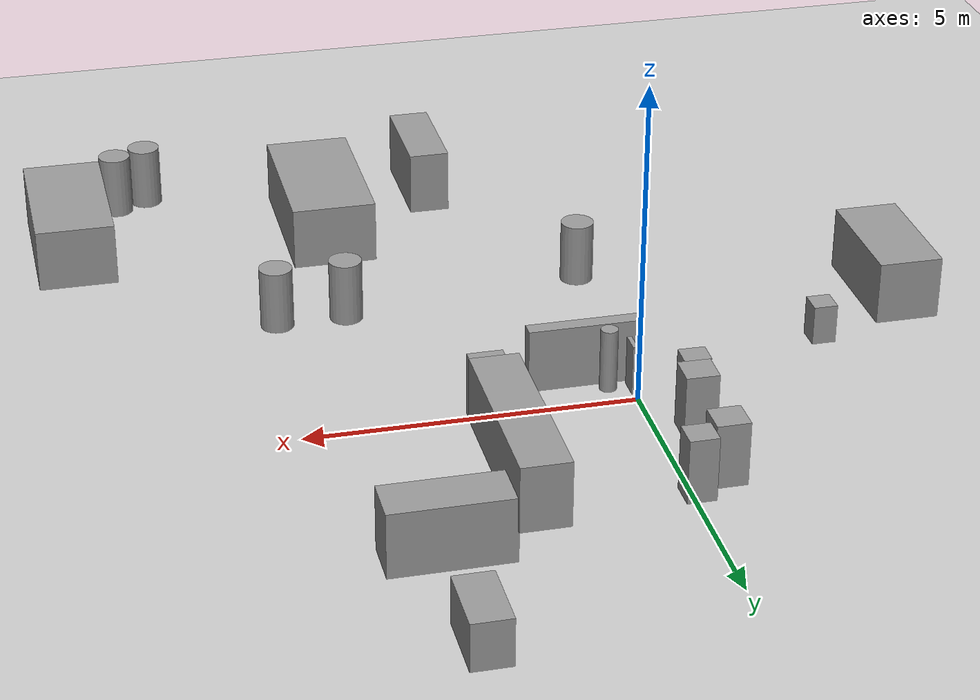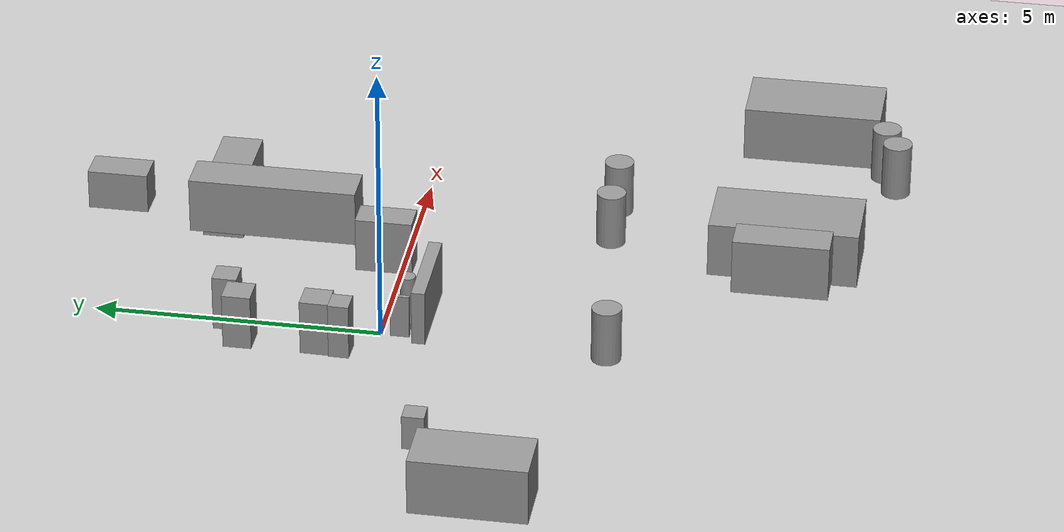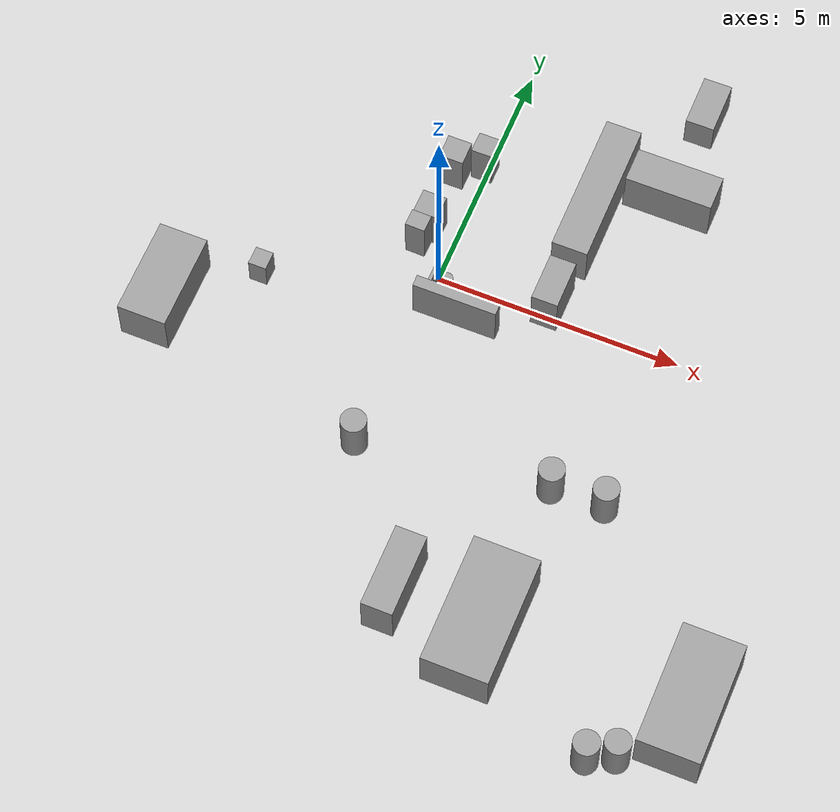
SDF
<sdf version="1.6">
 <world name="default">
  <model name="ground_plane">
   <static>1</static>
   <link name="link">
    <collision name="collision">
     <geometry><plane><normal>0 0 1</normal><size>100 100</size></plane></geometry>
     <surface><friction><ode><mu>100</mu><mu2>50</mu2></ode></friction></surface>
    </collision>
    <visual name="visual">
     <cast_shadows>0</cast_shadows>
     <geometry><plane><normal>0 0 1</normal><size>100 100</size></plane></geometry>
     <material>
      <script><uri>file://media/materials/scripts/gazebo.material</uri><name>Gazebo/Grey</name></script>
     </material>
    </visual>
   </link>
  </model>
  <model name="cma_armario">
   <link name="link_0">
    <pose>1.32157 0.885178 0.5 0 -0 0</pose>
    <inertial>
     <mass>0.402376</mass>
     <inertia>
      <ixx>0.0353686</ixx>
      <ixy>0</ixy>
      <ixz>0</ixz>
      <iyy>0.132616</iyy>
      <iyz>0</iyz>
      <izz>0.100922</izz>
     </inertia>
    </inertial>
    <visual name="visual">
     <geometry><box><size>1.71877 0.234069 1</size></box></geometry>
     <material>
      <lighting>1</lighting>
      <script><uri>file://media/materials/scripts/gazebo.material</uri><name>Gazebo/Grey</name></script>
      <ambient>0.3 0.3 0.3 1</ambient>
      <diffuse>0.7 0.7 0.7 1</diffuse>
      <specular>0.01 0.01 0.01 1</specular>
      <emissive>0 0 0 1</emissive>
     </material>
    </visual>
    <collision name="collision">
     <geometry><box><size>1.71877 0.234069 1</size></box></geometry>
     <surface>
      <friction>
       <ode><mu>1</mu><mu2>1</mu2><fdir1>0 0 0</fdir1><slip1>0</slip1><slip2>0</slip2></ode>
       <torsional>
        <coefficient>1</coefficient>
        <patch_radius>0</patch_radius>
        <surface_radius>0</surface_radius>
        <use_patch_radius>1</use_patch_radius>
        <ode><slip>0</slip></ode>
       </torsional>
      </friction>
      <bounce><restitution_coefficient>0</restitution_coefficient><threshold>1e+06</threshold></bounce>
      <contact>
       <collide_without_contact>0</collide_without_contact>
       <collide_without_contact_bitmask>1</collide_without_contact_bitmask>
       <collide_bitmask>1</collide_bitmask>
       <ode>
        <soft_cfm>0</soft_cfm>
        <soft_erp>0.2</soft_erp>
        <kp>1e+13</kp>
        <kd>1</kd>
        <max_vel>0.01</max_vel>
        <min_depth>0</min_depth>
       </ode>
       <bullet>
        <split_impulse>1</split_impulse>
        <split_impulse_penetration_threshold>-0.01</split_impulse_penetration_threshold>
        <soft_cfm>0</soft_cfm>
        <soft_erp>0.2</soft_erp>
        <kp>1e+13</kp>
        <kd>1</kd>
       </bullet>
      </contact>
     </surface>
    </collision>
   </link>
   <static>0</static>
   <pose>-0.668894 -1.58232 -1.4e-05 0 -6e-06 0.001173</pose>
  </model>
  <model name="cma_lixo">
   <link name="link_1">
    <pose>0.882962 1.81586 0.5 0 -0 0</pose>
    <inertial>
     <mass>0.0687644</mass>
     <inertia>
      <ixx>0.00602588</ixx>
      <ixy>0</ixy>
      <ixz>0</ixz>
      <iyy>0.00602588</iyy>
      <iyz>0</iyz>
      <izz>0.000591068</izz>
     </inertia>
    </inertial>
    <visual name="visual">
     <geometry><cylinder><radius>0.131112</radius><length>1</length></cylinder></geometry>
     <material>
      <lighting>1</lighting>
      <script><uri>file://media/materials/scripts/gazebo.material</uri><name>Gazebo/Grey</name></script>
      <ambient>0.3 0.3 0.3 1</ambient>
      <diffuse>0.7 0.7 0.7 1</diffuse>
      <specular>0.01 0.01 0.01 1</specular>
      <emissive>0 0 0 1</emissive>
     </material>
    </visual>
    <collision name="collision">
     <geometry><cylinder><radius>0.131112</radius><length>1</length></cylinder></geometry>
     <surface>
      <friction>
       <ode><mu>1</mu><mu2>1</mu2><fdir1>0 0 0</fdir1><slip1>0</slip1><slip2>0</slip2></ode>
       <torsional>
        <coefficient>1</coefficient>
        <patch_radius>0</patch_radius>
        <surface_radius>0</surface_radius>
        <use_patch_radius>1</use_patch_radius>
        <ode><slip>0</slip></ode>
       </torsional>
      </friction>
      <bounce><restitution_coefficient>0</restitution_coefficient><threshold>1e+06</threshold></bounce>
      <contact>
       <collide_without_contact>0</collide_without_contact>
       <collide_without_contact_bitmask>1</collide_without_contact_bitmask>
       <collide_bitmask>1</collide_bitmask>
       <ode>
        <soft_cfm>0</soft_cfm>
        <soft_erp>0.2</soft_erp>
        <kp>1e+13</kp>
        <kd>1</kd>
        <max_vel>0.01</max_vel>
        <min_depth>0</min_depth>
       </ode>
       <bullet>
        <split_impulse>1</split_impulse>
        <split_impulse_penetration_threshold>-0.01</split_impulse_penetration_threshold>
        <soft_cfm>0</soft_cfm>
        <soft_erp>0.2</soft_erp>
        <kp>1e+13</kp>
        <kd>1</kd>
       </bullet>
      </contact>
     </surface>
    </collision>
   </link>
   <static>0</static>
   <pose>-1.35785 -1.52544 -2e-06 0 0 -0.543097</pose>
  </model>
  <model name="cma_gaveteiro_pequeno_0">
   <link name="link_0">
    <pose>0.256174 1.25055 0.5 0 -0 0</pose>
    <inertial>
     <mass>0.187186</mass>
     <inertia>
      <ixx>0.01851</ixx>
      <ixy>0</ixy>
      <ixz>0</ixz>
      <iyy>0.0185276</iyy>
      <iyz>0</iyz>
      <izz>0.00583981</izz>
     </inertia>
    </inertial>
    <visual name="visual">
     <geometry><box><size>0.433317 0.432002 1</size></box></geometry>
     <material>
      <lighting>1</lighting>
      <script><uri>file://media/materials/scripts/gazebo.material</uri><name>Gazebo/Grey</name></script>
      <ambient>0.3 0.3 0.3 1</ambient>
      <diffuse>0.7 0.7 0.7 1</diffuse>
      <specular>0.01 0.01 0.01 1</specular>
      <emissive>0 0 0 1</emissive>
     </material>
    </visual>
    <collision name="collision">
     <geometry><box><size>0.433317 0.432002 1</size></box></geometry>
     <surface>
      <friction>
       <ode><mu>1</mu><mu2>1</mu2><fdir1>0 0 0</fdir1><slip1>0</slip1><slip2>0</slip2></ode>
       <torsional>
        <coefficient>1</coefficient>
        <patch_radius>0</patch_radius>
        <surface_radius>0</surface_radius>
        <use_patch_radius>1</use_patch_radius>
        <ode><slip>0</slip></ode>
       </torsional>
      </friction>
      <bounce><restitution_coefficient>0</restitution_coefficient><threshold>1e+06</threshold></bounce>
      <contact>
       <collide_without_contact>0</collide_without_contact>
       <collide_without_contact_bitmask>1</collide_without_contact_bitmask>
       <collide_bitmask>1</collide_bitmask>
       <ode>
        <soft_cfm>0</soft_cfm>
        <soft_erp>0.2</soft_erp>
        <kp>1e+13</kp>
        <kd>1</kd>
        <max_vel>0.01</max_vel>
        <min_depth>0</min_depth>
       </ode>
       <bullet>
        <split_impulse>1</split_impulse>
        <split_impulse_penetration_threshold>-0.01</split_impulse_penetration_threshold>
        <soft_cfm>0</soft_cfm>
        <soft_erp>0.2</soft_erp>
        <kp>1e+13</kp>
        <kd>1</kd>
       </bullet>
      </contact>
     </surface>
    </collision>
   </link>
   <static>0</static>
   <pose>-0.336337 1.39518 -7e-06 7e-06 -0 -0.000272</pose>
  </model>
  <model name="cma_gaveteiro">
   <link name="link_0">
    <pose>-0 4e-06 0 0 -0 0</pose>
    <inertial>
     <mass>0.245086</mass>
     <inertia>
      <ixx>0.025418</ixx>
      <ixy>0</ixy>
      <ixz>0</ixz>
      <iyy>0.0254411</iyy>
      <iyz>0</iyz>
      <izz>0.0100113</izz>
     </inertia>
    </inertial>
    <visual name="visual">
     <geometry><box><size>0.495657 0.494491 1</size></box></geometry>
     <material>
      <lighting>1</lighting>
      <script><uri>file://media/materials/scripts/gazebo.material</uri><name>Gazebo/Grey</name></script>
      <ambient>0.3 0.3 0.3 1</ambient>
      <diffuse>0.7 0.7 0.7 1</diffuse>
      <specular>0.01 0.01 0.01 1</specular>
      <emissive>0 0 0 1</emissive>
     </material>
    </visual>
    <collision name="collision">
     <geometry><box><size>0.495657 0.494491 1</size></box></geometry>
     <surface>
      <friction>
       <ode><mu>1</mu><mu2>1</mu2><fdir1>0 0 0</fdir1><slip1>0</slip1><slip2>0</slip2></ode>
       <torsional>
        <coefficient>1</coefficient>
        <patch_radius>0</patch_radius>
        <surface_radius>0</surface_radius>
        <use_patch_radius>1</use_patch_radius>
        <ode><slip>0</slip></ode>
       </torsional>
      </friction>
      <bounce><restitution_coefficient>0</restitution_coefficient><threshold>1e+06</threshold></bounce>
      <contact>
       <collide_without_contact>0</collide_without_contact>
       <collide_without_contact_bitmask>1</collide_without_contact_bitmask>
       <collide_bitmask>1</collide_bitmask>
       <ode>
        <soft_cfm>0</soft_cfm>
        <soft_erp>0.2</soft_erp>
        <kp>1e+13</kp>
        <kd>1</kd>
        <max_vel>0.01</max_vel>
        <min_depth>0</min_depth>
       </ode>
       <bullet>
        <split_impulse>1</split_impulse>
        <split_impulse_penetration_threshold>-0.01</split_impulse_penetration_threshold>
        <soft_cfm>0</soft_cfm>
        <soft_erp>0.2</soft_erp>
        <kp>1e+13</kp>
        <kd>1</kd>
       </bullet>
      </contact>
     </surface>
    </collision>
   </link>
   <static>0</static>
   <pose>-0.591984 2.32618 0.499998 -8e-06 -0 0.000717</pose>
  </model>
  <model name="cma_gaveteiro_0">
   <link name="link_0">
    <pose>-0 4e-06 0 0 -0 0</pose>
    <inertial>
     <mass>0.245086</mass>
     <inertia>
      <ixx>0.025418</ixx>
      <ixy>0</ixy>
      <ixz>0</ixz>
      <iyy>0.0254411</iyy>
      <iyz>0</iyz>
      <izz>0.0100113</izz>
     </inertia>
    </inertial>
    <visual name="visual">
     <geometry><box><size>0.495657 0.494491 1</size></box></geometry>
     <material>
      <lighting>1</lighting>
      <script><uri>file://media/materials/scripts/gazebo.material</uri><name>Gazebo/Grey</name></script>
      <ambient>0.3 0.3 0.3 1</ambient>
      <diffuse>0.7 0.7 0.7 1</diffuse>
      <specular>0.01 0.01 0.01 1</specular>
      <emissive>0 0 0 1</emissive>
     </material>
    </visual>
    <collision name="collision">
     <geometry><box><size>0.495657 0.494491 1</size></box></geometry>
     <surface>
      <friction>
       <ode><mu>1</mu><mu2>1</mu2><fdir1>0 0 0</fdir1><slip1>0</slip1><slip2>0</slip2></ode>
       <torsional>
        <coefficient>1</coefficient>
        <patch_radius>0</patch_radius>
        <surface_radius>0</surface_radius>
        <use_patch_radius>1</use_patch_radius>
        <ode><slip>0</slip></ode>
       </torsional>
      </friction>
      <bounce><restitution_coefficient>0</restitution_coefficient><threshold>1e+06</threshold></bounce>
      <contact>
       <collide_without_contact>0</collide_without_contact>
       <collide_without_contact_bitmask>1</collide_without_contact_bitmask>
       <collide_bitmask>1</collide_bitmask>
       <ode>
        <soft_cfm>0</soft_cfm>
        <soft_erp>0.2</soft_erp>
        <kp>1e+13</kp>
        <kd>1</kd>
        <max_vel>0.01</max_vel>
        <min_depth>0</min_depth>
       </ode>
       <bullet>
        <split_impulse>1</split_impulse>
        <split_impulse_penetration_threshold>-0.01</split_impulse_penetration_threshold>
        <soft_cfm>0</soft_cfm>
        <soft_erp>0.2</soft_erp>
        <kp>1e+13</kp>
        <kd>1</kd>
       </bullet>
      </contact>
     </surface>
    </collision>
   </link>
   <static>0</static>
   <pose>-0.578223 0.983166 0.499999 0 -6e-06 -0.017727</pose>
  </model>
  <model name="cma_sofa2">
   <link name="link_0">
    <pose>-4.668 -2.00601 0.5 0 -0 0</pose>
    <inertial>
     <mass>1.98683</mass>
     <inertia>
      <ixx>0.819149</ixx>
      <ixy>0</ixy>
      <ixz>0</ixz>
      <iyy>0.331138</iyy>
      <iyz>0</iyz>
      <izz>0.819149</izz>
     </inertia>
    </inertial>
    <visual name="visual">
     <geometry><box><size>1 1.98682 1</size></box></geometry>
     <material>
      <lighting>1</lighting>
      <script><uri>file://media/materials/scripts/gazebo.material</uri><name>Gazebo/Grey</name></script>
      <ambient>0.3 0.3 0.3 1</ambient>
      <diffuse>0.7 0.7 0.7 1</diffuse>
      <specular>0.01 0.01 0.01 1</specular>
      <emissive>0 0 0 1</emissive>
     </material>
    </visual>
    <collision name="collision">
     <geometry><box><size>1 1.98682 1</size></box></geometry>
     <surface>
      <friction>
       <ode><mu>1</mu><mu2>1</mu2><fdir1>0 0 0</fdir1><slip1>0</slip1><slip2>0</slip2></ode>
       <torsional>
        <coefficient>1</coefficient>
        <patch_radius>0</patch_radius>
        <surface_radius>0</surface_radius>
        <use_patch_radius>1</use_patch_radius>
        <ode><slip>0</slip></ode>
       </torsional>
      </friction>
      <bounce><restitution_coefficient>0</restitution_coefficient><threshold>1e+06</threshold></bounce>
      <contact>
       <collide_without_contact>0</collide_without_contact>
       <collide_without_contact_bitmask>1</collide_without_contact_bitmask>
       <collide_bitmask>1</collide_bitmask>
       <ode>
        <soft_cfm>0</soft_cfm>
        <soft_erp>0.2</soft_erp>
        <kp>1e+13</kp>
        <kd>1</kd>
        <max_vel>0.01</max_vel>
        <min_depth>0</min_depth>
       </ode>
       <bullet>
        <split_impulse>1</split_impulse>
        <split_impulse_penetration_threshold>-0.01</split_impulse_penetration_threshold>
        <soft_cfm>0</soft_cfm>
        <soft_erp>0.2</soft_erp>
        <kp>1e+13</kp>
        <kd>1</kd>
       </bullet>
      </contact>
     </surface>
    </collision>
   </link>
   <static>0</static>
   <pose>-0.095319 -0.409541 -2.4e-05 0 5e-06 -6e-06</pose>
  </model>
  <model name="cma_apoio_s">
   <link name="link_1">
    <pose>-1.9376 -3.46551 0.5 0 -0 0</pose>
    <inertial>
     <mass>0.0878463</mass>
     <inertia>
      <ixx>0.00392696</ixx>
      <ixy>0</ixy>
      <ixz>0</ixz>
      <iyy>0.00385356</iyy>
      <iyz>0</iyz>
      <izz>0.0020587</izz>
     </inertia>
    </inertial>
    <visual name="visual">
     <geometry><box><size>0.368223 0.381592 0.625118</size></box></geometry>
     <material>
      <lighting>1</lighting>
      <script><uri>file://media/materials/scripts/gazebo.material</uri><name>Gazebo/Grey</name></script>
      <ambient>0.3 0.3 0.3 1</ambient>
      <diffuse>0.7 0.7 0.7 1</diffuse>
      <specular>0.01 0.01 0.01 1</specular>
      <emissive>0 0 0 1</emissive>
     </material>
    </visual>
    <collision name="collision">
     <geometry><box><size>0.368223 0.381592 0.625118</size></box></geometry>
     <surface>
      <friction>
       <ode><mu>1</mu><mu2>1</mu2><fdir1>0 0 0</fdir1><slip1>0</slip1><slip2>0</slip2></ode>
       <torsional>
        <coefficient>1</coefficient>
        <patch_radius>0</patch_radius>
        <surface_radius>0</surface_radius>
        <use_patch_radius>1</use_patch_radius>
        <ode><slip>0</slip></ode>
       </torsional>
      </friction>
      <bounce><restitution_coefficient>0</restitution_coefficient><threshold>1e+06</threshold></bounce>
      <contact>
       <collide_without_contact>0</collide_without_contact>
       <collide_without_contact_bitmask>1</collide_without_contact_bitmask>
       <collide_bitmask>1</collide_bitmask>
       <ode>
        <soft_cfm>0</soft_cfm>
        <soft_erp>0.2</soft_erp>
        <kp>1e+13</kp>
        <kd>1</kd>
        <max_vel>0.01</max_vel>
        <min_depth>0</min_depth>
       </ode>
       <bullet>
        <split_impulse>1</split_impulse>
        <split_impulse_penetration_threshold>-0.01</split_impulse_penetration_threshold>
        <soft_cfm>0</soft_cfm>
        <soft_erp>0.2</soft_erp>
        <kp>1e+13</kp>
        <kd>1</kd>
       </bullet>
      </contact>
     </surface>
    </collision>
   </link>
   <static>0</static>
   <pose>-1.31336 2.27339 -0.187469 -1.2e-05 -9e-06 0.000415</pose>
  </model>
  <model name="cma_sofa_ch2">
   <link name="link_0">
    <pose>7.54152 -9.06061 0.5 0 -0 0</pose>
    <inertial>
     <mass>3.05287</mass>
     <inertia><ixx>1.79053</ixx><ixy>0</ixy><ixz>0</ixz><iyy>0.647089</iyy><iyz>0</iyz><izz>1.92881</izz></inertia>
    </inertial>
    <visual name="visual">
     <geometry><box><size>1.24235 2.45729 1</size></box></geometry>
     <material>
      <lighting>1</lighting>
      <script><uri>file://media/materials/scripts/gazebo.material</uri><name>Gazebo/Grey</name></script>
      <ambient>0.3 0.3 0.3 1</ambient>
      <diffuse>0.7 0.7 0.7 1</diffuse>
      <specular>0.01 0.01 0.01 1</specular>
      <emissive>0 0 0 1</emissive>
     </material>
    </visual>
    <collision name="collision">
     <geometry><box><size>1.24235 2.45729 1</size></box></geometry>
     <surface>
      <friction>
       <ode><mu>1</mu><mu2>1</mu2><fdir1>0 0 0</fdir1><slip1>0</slip1><slip2>0</slip2></ode>
       <torsional>
        <coefficient>1</coefficient>
        <patch_radius>0</patch_radius>
        <surface_radius>0</surface_radius>
        <use_patch_radius>1</use_patch_radius>
        <ode><slip>0</slip></ode>
       </torsional>
      </friction>
      <bounce><restitution_coefficient>0</restitution_coefficient><threshold>1e+06</threshold></bounce>
      <contact>
       <collide_without_contact>0</collide_without_contact>
       <collide_without_contact_bitmask>1</collide_without_contact_bitmask>
       <collide_bitmask>1</collide_bitmask>
       <ode>
        <soft_cfm>0</soft_cfm>
        <soft_erp>0.2</soft_erp>
        <kp>1e+13</kp>
        <kd>1</kd>
        <max_vel>0.01</max_vel>
        <min_depth>0</min_depth>
       </ode>
       <bullet>
        <split_impulse>1</split_impulse>
        <split_impulse_penetration_threshold>-0.01</split_impulse_penetration_threshold>
        <soft_cfm>0</soft_cfm>
        <soft_erp>0.2</soft_erp>
        <kp>1e+13</kp>
        <kd>1</kd>
       </bullet>
      </contact>
     </surface>
    </collision>
   </link>
   <model name="cma_armarioL">
    <link name="link_0">
     <pose>3.66226 -6.16735 0.5 0 -0 0</pose>
     <inertial>
      <mass>1.04821</mass>
      <inertia>
       <ixx>0.330873</ixx>
       <ixy>0</ixy>
       <ixz>0</ixz>
       <iyy>0.121777</iyy>
       <iyz>0</iyz>
       <izz>0.277949</izz>
      </inertia>
     </inertial>
     <visual name="visual">
      <geometry><box><size>0.627792 1.66972 1</size></box></geometry>
      <material>
       <lighting>1</lighting>
       <script><uri>file://media/materials/scripts/gazebo.material</uri><name>Gazebo/Grey</name></script>
       <ambient>0.3 0.3 0.3 1</ambient>
       <diffuse>0.7 0.7 0.7 1</diffuse>
       <specular>0.01 0.01 0.01 1</specular>
       <emissive>0 0 0 1</emissive>
      </material>
     </visual>
     <collision name="collision">
      <geometry><box><size>0.627792 1.66972 1</size></box></geometry>
      <surface>
       <friction>
        <ode><mu>1</mu><mu2>1</mu2><fdir1>0 0 0</fdir1><slip1>0</slip1><slip2>0</slip2></ode>
        <torsional>
         <coefficient>1</coefficient>
         <patch_radius>0</patch_radius>
         <surface_radius>0</surface_radius>
         <use_patch_radius>1</use_patch_radius>
         <ode><slip>0</slip></ode>
        </torsional>
       </friction>
       <bounce><restitution_coefficient>0</restitution_coefficient><threshold>1e+06</threshold></bounce>
       <contact>
        <collide_without_contact>0</collide_without_contact>
        <collide_without_contact_bitmask>1</collide_without_contact_bitmask>
        <collide_bitmask>1</collide_bitmask>
        <ode>
         <soft_cfm>0</soft_cfm>
         <soft_erp>0.2</soft_erp>
         <kp>1e+13</kp>
         <kd>1</kd>
         <max_vel>0.01</max_vel>
         <min_depth>0</min_depth>
        </ode>
        <bullet>
         <split_impulse>1</split_impulse>
         <split_impulse_penetration_threshold>-0.01</split_impulse_penetration_threshold>
         <soft_cfm>0</soft_cfm>
         <soft_erp>0.2</soft_erp>
         <kp>1e+13</kp>
         <kd>1</kd>
        </bullet>
       </contact>
      </surface>
     </collision>
    </link>
    <static>0</static>
    <pose>-1.91803 -2.92011 0.5 0 -0 0</pose>
   </model>
   <model name="cma_cesto">
    <link name="link_1">
     <pose>-0.329659 -1.55494 0 0 -0 0</pose>
     <inertial>
      <mass>0.267897</mass>
      <inertia>
       <ixx>0.0268102</ixx>
       <ixy>0</ixy>
       <ixz>0</ixz>
       <iyy>0.0268102</iyy>
       <iyz>0</iyz>
       <izz>0.00897111</izz>
      </inertia>
     </inertial>
     <visual name="visual">
      <geometry><cylinder><radius>0.258792</radius><length>1</length></cylinder></geometry>
      <material>
       <lighting>1</lighting>
       <script><uri>file://media/materials/scripts/gazebo.material</uri><name>Gazebo/Grey</name></script>
       <ambient>0.3 0.3 0.3 1</ambient>
       <diffuse>0.7 0.7 0.7 1</diffuse>
       <specular>0.01 0.01 0.01 1</specular>
       <emissive>0 0 0 1</emissive>
      </material>
     </visual>
     <collision name="collision">
      <geometry><cylinder><radius>0.258792</radius><length>1</length></cylinder></geometry>
      <surface>
       <friction>
        <ode><mu>1</mu><mu2>1</mu2><fdir1>0 0 0</fdir1><slip1>0</slip1><slip2>0</slip2></ode>
        <torsional>
         <coefficient>1</coefficient>
         <patch_radius>0</patch_radius>
         <surface_radius>0</surface_radius>
         <use_patch_radius>1</use_patch_radius>
         <ode><slip>0</slip></ode>
        </torsional>
       </friction>
       <bounce><restitution_coefficient>0</restitution_coefficient><threshold>1e+06</threshold></bounce>
       <contact>
        <collide_without_contact>0</collide_without_contact>
        <collide_without_contact_bitmask>1</collide_without_contact_bitmask>
        <collide_bitmask>1</collide_bitmask>
        <ode>
         <soft_cfm>0</soft_cfm>
         <soft_erp>0.2</soft_erp>
         <kp>1e+13</kp>
         <kd>1</kd>
         <max_vel>0.01</max_vel>
         <min_depth>0</min_depth>
        </ode>
        <bullet>
         <split_impulse>1</split_impulse>
         <split_impulse_penetration_threshold>-0.01</split_impulse_penetration_threshold>
         <soft_cfm>0</soft_cfm>
         <soft_erp>0.2</soft_erp>
         <kp>1e+13</kp>
         <kd>1</kd>
        </bullet>
       </contact>
      </surface>
     </collision>
    </link>
    <static>0</static>
    <pose>6.97935 -8.88509 0.5 0 -0 0</pose>
   </model>
   <model name="cma_cesto_0">
    <link name="link_1">
     <pose>-0.329659 -1.55494 0 0 -0 0</pose>
     <inertial>
      <mass>0.267897</mass>
      <inertia>
       <ixx>0.0268102</ixx>
       <ixy>0</ixy>
       <ixz>0</ixz>
       <iyy>0.0268102</iyy>
       <iyz>0</iyz>
       <izz>0.00897111</izz>
      </inertia>
     </inertial>
     <visual name="visual">
      <geometry><cylinder><radius>0.258792</radius><length>1</length></cylinder></geometry>
      <material>
       <lighting>1</lighting>
       <script><uri>file://media/materials/scripts/gazebo.material</uri><name>Gazebo/Grey</name></script>
       <ambient>0.3 0.3 0.3 1</ambient>
       <diffuse>0.7 0.7 0.7 1</diffuse>
       <specular>0.01 0.01 0.01 1</specular>
       <emissive>0 0 0 1</emissive>
      </material>
     </visual>
     <collision name="collision">
      <geometry><cylinder><radius>0.258792</radius><length>1</length></cylinder></geometry>
      <surface>
       <friction>
        <ode><mu>1</mu><mu2>1</mu2><fdir1>0 0 0</fdir1><slip1>0</slip1><slip2>0</slip2></ode>
        <torsional>
         <coefficient>1</coefficient>
         <patch_radius>0</patch_radius>
         <surface_radius>0</surface_radius>
         <use_patch_radius>1</use_patch_radius>
         <ode><slip>0</slip></ode>
        </torsional>
       </friction>
       <bounce><restitution_coefficient>0</restitution_coefficient><threshold>1e+06</threshold></bounce>
       <contact>
        <collide_without_contact>0</collide_without_contact>
        <collide_without_contact_bitmask>1</collide_without_contact_bitmask>
        <collide_bitmask>1</collide_bitmask>
        <ode>
         <soft_cfm>0</soft_cfm>
         <soft_erp>0.2</soft_erp>
         <kp>1e+13</kp>
         <kd>1</kd>
         <max_vel>0.01</max_vel>
         <min_depth>0</min_depth>
        </ode>
        <bullet>
         <split_impulse>1</split_impulse>
         <split_impulse_penetration_threshold>-0.01</split_impulse_penetration_threshold>
         <soft_cfm>0</soft_cfm>
         <soft_erp>0.2</soft_erp>
         <kp>1e+13</kp>
         <kd>1</kd>
        </bullet>
       </contact>
      </surface>
     </collision>
    </link>
    <static>0</static>
    <pose>6.4663 -9.11922 0.5 0 -0 0</pose>
   </model>
   <model name="cma_cesto_1">
    <link name="link_1">
     <pose>-0.329659 -1.55494 0 0 -0 0</pose>
     <inertial>
      <mass>0.267897</mass>
      <inertia>
       <ixx>0.0268102</ixx>
       <ixy>0</ixy>
       <ixz>0</ixz>
       <iyy>0.0268102</iyy>
       <iyz>0</iyz>
       <izz>0.00897111</izz>
      </inertia>
     </inertial>
     <visual name="visual">
      <geometry><cylinder><radius>0.258792</radius><length>1</length></cylinder></geometry>
      <material>
       <lighting>1</lighting>
       <script><uri>file://media/materials/scripts/gazebo.material</uri><name>Gazebo/Grey</name></script>
       <ambient>0.3 0.3 0.3 1</ambient>
       <diffuse>0.7 0.7 0.7 1</diffuse>
       <specular>0.01 0.01 0.01 1</specular>
       <emissive>0 0 0 1</emissive>
      </material>
     </visual>
     <collision name="collision">
      <geometry><cylinder><radius>0.258792</radius><length>1</length></cylinder></geometry>
      <surface>
       <friction>
        <ode><mu>1</mu><mu2>1</mu2><fdir1>0 0 0</fdir1><slip1>0</slip1><slip2>0</slip2></ode>
        <torsional>
         <coefficient>1</coefficient>
         <patch_radius>0</patch_radius>
         <surface_radius>0</surface_radius>
         <use_patch_radius>1</use_patch_radius>
         <ode><slip>0</slip></ode>
        </torsional>
       </friction>
       <bounce><restitution_coefficient>0</restitution_coefficient><threshold>1e+06</threshold></bounce>
       <contact>
        <collide_without_contact>0</collide_without_contact>
        <collide_without_contact_bitmask>1</collide_without_contact_bitmask>
        <collide_bitmask>1</collide_bitmask>
        <ode>
         <soft_cfm>0</soft_cfm>
         <soft_erp>0.2</soft_erp>
         <kp>1e+13</kp>
         <kd>1</kd>
         <max_vel>0.01</max_vel>
         <min_depth>0</min_depth>
        </ode>
        <bullet>
         <split_impulse>1</split_impulse>
         <split_impulse_penetration_threshold>-0.01</split_impulse_penetration_threshold>
         <soft_cfm>0</soft_cfm>
         <soft_erp>0.2</soft_erp>
         <kp>1e+13</kp>
         <kd>1</kd>
        </bullet>
       </contact>
      </surface>
     </collision>
    </link>
    <static>0</static>
    <pose>0.091229 -4.78918 0.5 0 -0 0</pose>
   </model>
   <model name="cma_cesto_2">
    <link name="link_1">
     <pose>-0.329659 -1.55494 0 0 -0 0</pose>
     <inertial>
      <mass>0.267897</mass>
      <inertia>
       <ixx>0.0268102</ixx>
       <ixy>0</ixy>
       <ixz>0</ixz>
       <iyy>0.0268102</iyy>
       <iyz>0</iyz>
       <izz>0.00897111</izz>
      </inertia>
     </inertial>
     <visual name="visual">
      <geometry><cylinder><radius>0.258792</radius><length>1</length></cylinder></geometry>
      <material>
       <lighting>1</lighting>
       <script><uri>file://media/materials/scripts/gazebo.material</uri><name>Gazebo/Grey</name></script>
       <ambient>0.3 0.3 0.3 1</ambient>
       <diffuse>0.7 0.7 0.7 1</diffuse>
       <specular>0.01 0.01 0.01 1</specular>
       <emissive>0 0 0 1</emissive>
      </material>
     </visual>
     <collision name="collision">
      <geometry><cylinder><radius>0.258792</radius><length>1</length></cylinder></geometry>
      <surface>
       <friction>
        <ode><mu>1</mu><mu2>1</mu2><fdir1>0 0 0</fdir1><slip1>0</slip1><slip2>0</slip2></ode>
        <torsional>
         <coefficient>1</coefficient>
         <patch_radius>0</patch_radius>
         <surface_radius>0</surface_radius>
         <use_patch_radius>1</use_patch_radius>
         <ode><slip>0</slip></ode>
        </torsional>
       </friction>
       <bounce><restitution_coefficient>0</restitution_coefficient><threshold>1e+06</threshold></bounce>
       <contact>
        <collide_without_contact>0</collide_without_contact>
        <collide_without_contact_bitmask>1</collide_without_contact_bitmask>
        <collide_bitmask>1</collide_bitmask>
        <ode>
         <soft_cfm>0</soft_cfm>
         <soft_erp>0.2</soft_erp>
         <kp>1e+13</kp>
         <kd>1</kd>
         <max_vel>0.01</max_vel>
         <min_depth>0</min_depth>
        </ode>
        <bullet>
         <split_impulse>1</split_impulse>
         <split_impulse_penetration_threshold>-0.01</split_impulse_penetration_threshold>
         <soft_cfm>0</soft_cfm>
         <soft_erp>0.2</soft_erp>
         <kp>1e+13</kp>
         <kd>1</kd>
        </bullet>
       </contact>
      </surface>
     </collision>
    </link>
    <static>0</static>
    <pose>5.00434 -4.30015 0.5 0 -0 0</pose>
   </model>
   <model name="cma_cesto_3">
    <link name="link_1">
     <pose>-0.329659 -1.55494 0 0 -0 0</pose>
     <inertial>
      <mass>0.267897</mass>
      <inertia>
       <ixx>0.0268102</ixx>
       <ixy>0</ixy>
       <ixz>0</ixz>
       <iyy>0.0268102</iyy>
       <iyz>0</iyz>
       <izz>0.00897111</izz>
      </inertia>
     </inertial>
     <visual name="visual">
      <geometry><cylinder><radius>0.258792</radius><length>1</length></cylinder></geometry>
      <material>
       <lighting>1</lighting>
       <script><uri>file://media/materials/scripts/gazebo.material</uri><name>Gazebo/Grey</name></script>
       <ambient>0.3 0.3 0.3 1</ambient>
       <diffuse>0.7 0.7 0.7 1</diffuse>
       <specular>0.01 0.01 0.01 1</specular>
       <emissive>0 0 0 1</emissive>
      </material>
     </visual>
     <collision name="collision">
      <geometry><cylinder><radius>0.258792</radius><length>1</length></cylinder></geometry>
      <surface>
       <friction>
        <ode><mu>1</mu><mu2>1</mu2><fdir1>0 0 0</fdir1><slip1>0</slip1><slip2>0</slip2></ode>
        <torsional>
         <coefficient>1</coefficient>
         <patch_radius>0</patch_radius>
         <surface_radius>0</surface_radius>
         <use_patch_radius>1</use_patch_radius>
         <ode><slip>0</slip></ode>
        </torsional>
       </friction>
       <bounce><restitution_coefficient>0</restitution_coefficient><threshold>1e+06</threshold></bounce>
       <contact>
        <collide_without_contact>0</collide_without_contact>
        <collide_without_contact_bitmask>1</collide_without_contact_bitmask>
        <collide_bitmask>1</collide_bitmask>
        <ode>
         <soft_cfm>0</soft_cfm>
         <soft_erp>0.2</soft_erp>
         <kp>1e+13</kp>
         <kd>1</kd>
         <max_vel>0.01</max_vel>
         <min_depth>0</min_depth>
        </ode>
        <bullet>
         <split_impulse>1</split_impulse>
         <split_impulse_penetration_threshold>-0.01</split_impulse_penetration_threshold>
         <soft_cfm>0</soft_cfm>
         <soft_erp>0.2</soft_erp>
         <kp>1e+13</kp>
         <kd>1</kd>
        </bullet>
       </contact>
      </surface>
     </collision>
    </link>
    <static>0</static>
    <pose>3.91768 -4.3154 0.5 0 -0 0</pose>
   </model>
   <model name="cma_sofa_ch1">
    <link name="link_0">
     <pose>-4e-06 5e-06 0 0 -0 0</pose>
     <inertial>
      <mass>3.51192</mass>
      <inertia><ixx>2.30831</ixx><ixy>0</ixy><ixz>0</ixz><iyy>0.816746</iyy><iyz>0</iyz><izz>2.53974</izz></inertia>
     </inertial>
     <visual name="visual">
      <geometry><box><size>1.33823 2.62439 1</size></box></geometry>
      <material>
       <lighting>1</lighting>
       <script><uri>file://media/materials/scripts/gazebo.material</uri><name>Gazebo/Grey</name></script>
       <ambient>0.3 0.3 0.3 1</ambient>
       <diffuse>0.7 0.7 0.7 1</diffuse>
       <specular>0.01 0.01 0.01 1</specular>
       <emissive>0 0 0 1</emissive>
      </material>
     </visual>
     <collision name="collision">
      <geometry><box><size>1.33823 2.62439 1</size></box></geometry>
      <surface>
       <friction>
        <ode><mu>1</mu><mu2>1</mu2><fdir1>0 0 0</fdir1><slip1>0</slip1><slip2>0</slip2></ode>
        <torsional>
         <coefficient>1</coefficient>
         <patch_radius>0</patch_radius>
         <surface_radius>0</surface_radius>
         <use_patch_radius>1</use_patch_radius>
         <ode><slip>0</slip></ode>
        </torsional>
       </friction>
       <bounce><restitution_coefficient>0</restitution_coefficient><threshold>1e+06</threshold></bounce>
       <contact>
        <collide_without_contact>0</collide_without_contact>
        <collide_without_contact_bitmask>1</collide_without_contact_bitmask>
        <collide_bitmask>1</collide_bitmask>
        <ode>
         <soft_cfm>0</soft_cfm>
         <soft_erp>0.2</soft_erp>
         <kp>1e+13</kp>
         <kd>1</kd>
         <max_vel>0.01</max_vel>
         <min_depth>0</min_depth>
        </ode>
        <bullet>
         <split_impulse>1</split_impulse>
         <split_impulse_penetration_threshold>-0.01</split_impulse_penetration_threshold>
         <soft_cfm>0</soft_cfm>
         <soft_erp>0.2</soft_erp>
         <kp>1e+13</kp>
         <kd>1</kd>
        </bullet>
       </contact>
      </surface>
     </collision>
    </link>
    <static>0</static>
    <pose>3.4236 -8.99816 0.5 0 -0 0</pose>
   </model>
   <static>0</static>
   <pose>0.11721 2.42164 0 0 -0 0</pose>
  </model>
  <model name="cma_gaveteiro_pequeno_e">
   <link name="link_1">
    <pose>1e-06 -3e-06 0 0 -0 0</pose>
    <inertial>
     <mass>0.145532</mass>
     <inertia>
      <ixx>0.0136813</ixx>
      <ixy>0</ixy>
      <ixz>0</ixz>
      <iyy>0.0141327</iyy>
      <iyz>0</iyz>
      <izz>0.00355866</izz>
     </inertia>
    </inertial>
    <visual name="visual">
     <geometry><box><size>0.4066 0.357918 1</size></box></geometry>
     <material>
      <lighting>1</lighting>
      <script><uri>file://media/materials/scripts/gazebo.material</uri><name>Gazebo/Grey</name></script>
      <ambient>0.3 0.3 0.3 1</ambient>
      <diffuse>0.7 0.7 0.7 1</diffuse>
      <specular>0.01 0.01 0.01 1</specular>
      <emissive>0 0 0 1</emissive>
     </material>
    </visual>
    <collision name="collision">
     <geometry><box><size>0.4066 0.357918 1</size></box></geometry>
     <surface>
      <friction>
       <ode><mu>1</mu><mu2>1</mu2><fdir1>0 0 0</fdir1><slip1>0</slip1><slip2>0</slip2></ode>
       <torsional>
        <coefficient>1</coefficient>
        <patch_radius>0</patch_radius>
        <surface_radius>0</surface_radius>
        <use_patch_radius>1</use_patch_radius>
        <ode><slip>0</slip></ode>
       </torsional>
      </friction>
      <bounce><restitution_coefficient>0</restitution_coefficient><threshold>1e+06</threshold></bounce>
      <contact>
       <collide_without_contact>0</collide_without_contact>
       <collide_without_contact_bitmask>1</collide_without_contact_bitmask>
       <collide_bitmask>1</collide_bitmask>
       <ode>
        <soft_cfm>0</soft_cfm>
        <soft_erp>0.2</soft_erp>
        <kp>1e+13</kp>
        <kd>1</kd>
        <max_vel>0.01</max_vel>
        <min_depth>0</min_depth>
       </ode>
       <bullet>
        <split_impulse>1</split_impulse>
        <split_impulse_penetration_threshold>-0.01</split_impulse_penetration_threshold>
        <soft_cfm>0</soft_cfm>
        <soft_erp>0.2</soft_erp>
        <kp>1e+13</kp>
        <kd>1</kd>
       </bullet>
      </contact>
     </surface>
    </collision>
   </link>
   <static>0</static>
   <pose>-0.653199 0.558233 0.499999 -4e-06 -3e-06 -0.017727</pose>
  </model>
  <model name="cma_pe_mesa2">
   <link name="link_0">
    <pose>-1e-06 0 0 0 -0 0</pose>
    <inertial>
     <mass>0.0184993</mass>
     <inertia>
      <ixx>0.00113785</ixx>
      <ixy>0</ixy>
      <ixz>0</ixz>
      <iyy>0.000973568</iyy>
      <iyz>0</iyz>
      <izz>0.000179385</izz>
     </inertia>
    </inertial>
    <visual name="visual">
     <geometry><box><size>0.070005 0.33386 0.791592</size></box></geometry>
     <material>
      <lighting>1</lighting>
      <script><uri>file://media/materials/scripts/gazebo.material</uri><name>Gazebo/Grey</name></script>
      <ambient>0.3 0.3 0.3 1</ambient>
      <diffuse>0.7 0.7 0.7 1</diffuse>
      <specular>0.01 0.01 0.01 1</specular>
      <emissive>0 0 0 1</emissive>
     </material>
    </visual>
    <collision name="collision">
     <geometry><box><size>0.070005 0.33386 0.791592</size></box></geometry>
     <surface>
      <friction>
       <ode><mu>1</mu><mu2>1</mu2><fdir1>0 0 0</fdir1><slip1>0</slip1><slip2>0</slip2></ode>
       <torsional>
        <coefficient>1</coefficient>
        <patch_radius>0</patch_radius>
        <surface_radius>0</surface_radius>
        <use_patch_radius>1</use_patch_radius>
        <ode><slip>0</slip></ode>
       </torsional>
      </friction>
      <bounce><restitution_coefficient>0</restitution_coefficient><threshold>1e+06</threshold></bounce>
      <contact>
       <collide_without_contact>0</collide_without_contact>
       <collide_without_contact_bitmask>1</collide_without_contact_bitmask>
       <collide_bitmask>1</collide_bitmask>
       <ode>
        <soft_cfm>0</soft_cfm>
        <soft_erp>0.2</soft_erp>
        <kp>1e+13</kp>
        <kd>1</kd>
        <max_vel>0.01</max_vel>
        <min_depth>0</min_depth>
       </ode>
       <bullet>
        <split_impulse>1</split_impulse>
        <split_impulse_penetration_threshold>-0.01</split_impulse_penetration_threshold>
        <soft_cfm>0</soft_cfm>
        <soft_erp>0.2</soft_erp>
        <kp>1e+13</kp>
        <kd>1</kd>
       </bullet>
      </contact>
     </surface>
    </collision>
   </link>
   <static>0</static>
   <pose>0.008645 -0.342093 0.395787 -1e-06 -2e-06 -0.002946</pose>
  </model>
  <model name="cma_armario_coz_190x70cm">
   <link name="link_0">
    <pose>5.20958 2.97661 0.5 0 0 -1.57068</pose>
    <inertial>
     <mass>1.2966</mass>
     <inertia>
      <ixx>0.454477</ixx>
      <ixy>0</ixy>
      <ixz>0</ixz>
      <iyy>0.164706</iyy>
      <iyz>0</iyz>
      <izz>0.403084</izz>
     </inertia>
    </inertial>
    <visual name="visual">
     <geometry><box><size>0.724184 1.79058 1</size></box></geometry>
     <material>
      <lighting>1</lighting>
      <script><uri>file://media/materials/scripts/gazebo.material</uri><name>Gazebo/Grey</name></script>
      <ambient>0.3 0.3 0.3 1</ambient>
      <diffuse>0.7 0.7 0.7 1</diffuse>
      <specular>0.01 0.01 0.01 1</specular>
      <emissive>0 0 0 1</emissive>
     </material>
    </visual>
    <collision name="collision">
     <geometry><box><size>0.724184 1.79058 1</size></box></geometry>
     <surface>
      <friction>
       <ode><mu>1</mu><mu2>1</mu2><fdir1>0 0 0</fdir1><slip1>0</slip1><slip2>0</slip2></ode>
       <torsional>
        <coefficient>1</coefficient>
        <patch_radius>0</patch_radius>
        <surface_radius>0</surface_radius>
        <use_patch_radius>1</use_patch_radius>
        <ode><slip>0</slip></ode>
       </torsional>
      </friction>
      <bounce><restitution_coefficient>0</restitution_coefficient><threshold>1e+06</threshold></bounce>
      <contact>
       <collide_without_contact>0</collide_without_contact>
       <collide_without_contact_bitmask>1</collide_without_contact_bitmask>
       <collide_bitmask>1</collide_bitmask>
       <ode>
        <soft_cfm>0</soft_cfm>
        <soft_erp>0.2</soft_erp>
        <kp>1e+13</kp>
        <kd>1</kd>
        <max_vel>0.01</max_vel>
        <min_depth>0</min_depth>
       </ode>
       <bullet>
        <split_impulse>1</split_impulse>
        <split_impulse_penetration_threshold>-0.01</split_impulse_penetration_threshold>
        <soft_cfm>0</soft_cfm>
        <soft_erp>0.2</soft_erp>
        <kp>1e+13</kp>
        <kd>1</kd>
       </bullet>
      </contact>
     </surface>
    </collision>
   </link>
   <model name="cma_armario_coz_100x50cm">
    <link name="link_0">
     <pose>-3e-06 -3e-06 0 0 -0 0</pose>
     <inertial>
      <mass>0.536193</mass>
      <inertia>
       <ixx>0.0893657</ixx>
       <ixy>0</ixy>
       <ixz>0</ixz>
       <iyy>0.0575293</iyy>
       <iyz>0</iyz>
       <izz>0.0575293</izz>
      </inertia>
     </inertial>
     <visual name="visual">
      <geometry><box><size>0.536193 1 1</size></box></geometry>
      <material>
       <lighting>1</lighting>
       <script><uri>file://media/materials/scripts/gazebo.material</uri><name>Gazebo/Grey</name></script>
       <ambient>0.3 0.3 0.3 1</ambient>
       <diffuse>0.7 0.7 0.7 1</diffuse>
       <specular>0.01 0.01 0.01 1</specular>
       <emissive>0 0 0 1</emissive>
      </material>
     </visual>
     <collision name="collision">
      <geometry><box><size>0.536193 1 1</size></box></geometry>
      <surface>
       <friction>
        <ode><mu>1</mu><mu2>1</mu2><fdir1>0 0 0</fdir1><slip1>0</slip1><slip2>0</slip2></ode>
        <torsional>
         <coefficient>1</coefficient>
         <patch_radius>0</patch_radius>
         <surface_radius>0</surface_radius>
         <use_patch_radius>1</use_patch_radius>
         <ode><slip>0</slip></ode>
        </torsional>
       </friction>
       <bounce><restitution_coefficient>0</restitution_coefficient><threshold>1e+06</threshold></bounce>
       <contact>
        <collide_without_contact>0</collide_without_contact>
        <collide_without_contact_bitmask>1</collide_without_contact_bitmask>
        <collide_bitmask>1</collide_bitmask>
        <ode>
         <soft_cfm>0</soft_cfm>
         <soft_erp>0.2</soft_erp>
         <kp>1e+13</kp>
         <kd>1</kd>
         <max_vel>0.01</max_vel>
         <min_depth>0</min_depth>
        </ode>
        <bullet>
         <split_impulse>1</split_impulse>
         <split_impulse_penetration_threshold>-0.01</split_impulse_penetration_threshold>
         <soft_cfm>0</soft_cfm>
         <soft_erp>0.2</soft_erp>
         <kp>1e+13</kp>
         <kd>1</kd>
        </bullet>
       </contact>
      </surface>
     </collision>
    </link>
    <static>0</static>
    <pose>3.86455 -0.048915 0.5 0 -0 0</pose>
   </model>
   <model name="cma_armario_coz_300x70cm">
    <link name="link_0">
     <pose>3.26428 1.50856 0.5 0 -0 0</pose>
     <inertial>
      <mass>2.13833</mass>
      <inertia><ixx>1.732</ixx><ixy>0</ixy><ixz>0</ixz><iyy>0.271637</iyy><iyz>0</iyz><izz>1.64725</izz></inertia>
     </inertial>
     <visual name="visual">
      <geometry><box><size>0.724184 2.9529 1</size></box></geometry>
      <material>
       <lighting>1</lighting>
       <script><uri>file://media/materials/scripts/gazebo.material</uri><name>Gazebo/Grey</name></script>
       <ambient>0.3 0.3 0.3 1</ambient>
       <diffuse>0.7 0.7 0.7 1</diffuse>
       <specular>0.01 0.01 0.01 1</specular>
       <emissive>0 0 0 1</emissive>
      </material>
     </visual>
     <collision name="collision">
      <geometry><box><size>0.724184 2.9529 1</size></box></geometry>
      <surface>
       <friction>
        <ode><mu>1</mu><mu2>1</mu2><fdir1>0 0 0</fdir1><slip1>0</slip1><slip2>0</slip2></ode>
        <torsional>
         <coefficient>1</coefficient>
         <patch_radius>0</patch_radius>
         <surface_radius>0</surface_radius>
         <use_patch_radius>1</use_patch_radius>
         <ode><slip>0</slip></ode>
        </torsional>
       </friction>
       <bounce><restitution_coefficient>0</restitution_coefficient><threshold>1e+06</threshold></bounce>
       <contact>
        <collide_without_contact>0</collide_without_contact>
        <collide_without_contact_bitmask>1</collide_without_contact_bitmask>
        <collide_bitmask>1</collide_bitmask>
        <ode>
         <soft_cfm>0</soft_cfm>
         <soft_erp>0.2</soft_erp>
         <kp>1e+13</kp>
         <kd>1</kd>
         <max_vel>0.01</max_vel>
         <min_depth>0</min_depth>
        </ode>
        <bullet>
         <split_impulse>1</split_impulse>
         <split_impulse_penetration_threshold>-0.01</split_impulse_penetration_threshold>
         <soft_cfm>0</soft_cfm>
         <soft_erp>0.2</soft_erp>
         <kp>1e+13</kp>
         <kd>1</kd>
        </bullet>
       </contact>
      </surface>
     </collision>
    </link>
    <static>0</static>
    <pose>0.706289 0.418831 0.5 0 -0 0</pose>
   </model>
   <static>0</static>
   <pose>-1.5922 0.368557 -5e-06 2e-06 0 -0.000789</pose>
  </model>
  <model name="cma_area_a1">
   <link name="link_0">
    <pose>3.62133 5.38868 0.5 0 -0 0</pose>
    <inertial>
     <mass>0.459312</mass>
     <inertia>
      <ixx>0.0646994</ixx>
      <ixy>0</ixy>
      <ixz>0</ixz>
      <iyy>0.0334776</iyy>
      <iyz>0</iyz>
      <izz>0.0574177</izz>
     </inertia>
    </inertial>
    <visual name="visual">
     <geometry><box><size>0.584971 1.07606 0.729683</size></box></geometry>
     <material>
      <lighting>1</lighting>
      <script><uri>file://media/materials/scripts/gazebo.material</uri><name>Gazebo/Grey</name></script>
      <ambient>0.3 0.3 0.3 1</ambient>
      <diffuse>0.7 0.7 0.7 1</diffuse>
      <specular>0.01 0.01 0.01 1</specular>
      <emissive>0 0 0 1</emissive>
     </material>
    </visual>
    <collision name="collision">
     <geometry><box><size>0.584971 1.07606 0.729683</size></box></geometry>
     <surface>
      <friction>
       <ode><mu>1</mu><mu2>1</mu2><fdir1>0 0 0</fdir1><slip1>0</slip1><slip2>0</slip2></ode>
       <torsional>
        <coefficient>1</coefficient>
        <patch_radius>0</patch_radius>
        <surface_radius>0</surface_radius>
        <use_patch_radius>1</use_patch_radius>
        <ode><slip>0</slip></ode>
       </torsional>
      </friction>
      <bounce><restitution_coefficient>0</restitution_coefficient><threshold>1e+06</threshold></bounce>
      <contact>
       <collide_without_contact>0</collide_without_contact>
       <collide_without_contact_bitmask>1</collide_without_contact_bitmask>
       <collide_bitmask>1</collide_bitmask>
       <ode>
        <soft_cfm>0</soft_cfm>
        <soft_erp>0.2</soft_erp>
        <kp>1e+13</kp>
        <kd>1</kd>
        <max_vel>0.01</max_vel>
        <min_depth>0</min_depth>
       </ode>
       <bullet>
        <split_impulse>1</split_impulse>
        <split_impulse_penetration_threshold>-0.01</split_impulse_penetration_threshold>
        <soft_cfm>0</soft_cfm>
        <soft_erp>0.2</soft_erp>
        <kp>1e+13</kp>
        <kd>1</kd>
       </bullet>
      </contact>
     </surface>
    </collision>
   </link>
   <static>0</static>
   <pose>0 0 -0.135158 0 -0 0</pose>
  </model>
 </world>
</sdf>
